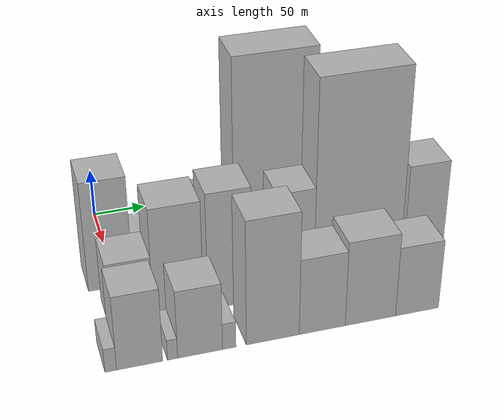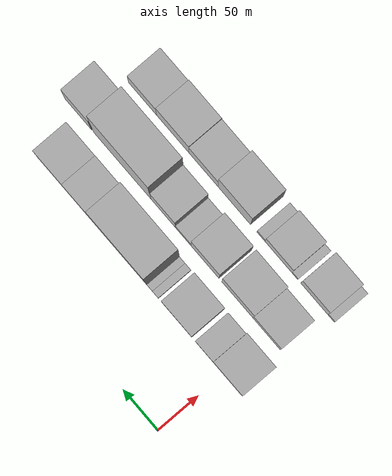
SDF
<sdf version="1.6">
 <world name="default">
  <model name="building_17">
   <static>1</static>
   <pose>100.0000 -5.4270 0 0.000000 0.000000 0.000000</pose>
   <link name="link">
    <pose>0 0 57.00 0 0 0</pose>
    <collision name="collision"><geometry><box><size>40.0000 40.4692 114.0000</size></box></geometry></collision>
    <visual name="visual">
     <cast_shadows>0</cast_shadows>
     <geometry><box><size>40.0000 40.4692 114.0000</size></box></geometry>
     <material>
      <script>
       <uri>model://HANNAS_wall/materials/scripts</uri>
       <uri>model://HANNAS_wall/materials/textures</uri>
       <name>vrc/HANNAS_wall</name>
      </script>
     </material>
    </visual>
   </link>
  </model>
  <model name="building_18">
   <static>1</static>
   <pose>100.0000 27.4994 0 0.000000 0.000000 0.000000</pose>
   <link name="link">
    <pose>0 0 24.00 0 0 0</pose>
    <collision name="collision"><geometry><box><size>40.0000 25.3837 48.0000</size></box></geometry></collision>
    <visual name="visual">
     <cast_shadows>0</cast_shadows>
     <geometry><box><size>40.0000 25.3837 48.0000</size></box></geometry>
     <material>
      <script>
       <uri>model://HANNAS_wall/materials/scripts</uri>
       <uri>model://HANNAS_wall/materials/textures</uri>
       <name>vrc/HANNAS_wall</name>
      </script>
     </material>
    </visual>
   </link>
  </model>
  <model name="building_19">
   <static>1</static>
   <pose>100.0000 66.5059 0 0.000000 0.000000 0.000000</pose>
   <link name="link">
    <pose>0 0 37.50 0 0 0</pose>
    <collision name="collision"><geometry><box><size>40.0000 42.6294 75.0000</size></box></geometry></collision>
    <visual name="visual">
     <cast_shadows>0</cast_shadows>
     <geometry><box><size>40.0000 42.6294 75.0000</size></box></geometry>
     <material>
      <script>
       <uri>model://HANNAS_wall/materials/scripts</uri>
       <uri>model://HANNAS_wall/materials/textures</uri>
       <name>vrc/HANNAS_wall</name>
      </script>
     </material>
    </visual>
   </link>
  </model>
  <model name="building_20">
   <static>1</static>
   <pose>100.0000 97.0517 0 0.000000 0.000000 0.000000</pose>
   <link name="link">
    <pose>0 0 9.00 0 0 0</pose>
    <collision name="collision"><geometry><box><size>40.0000 8.4620 18.0000</size></box></geometry></collision>
    <visual name="visual">
     <cast_shadows>0</cast_shadows>
     <geometry><box><size>40.0000 8.4620 18.0000</size></box></geometry>
     <material>
      <script>
       <uri>model://HANNAS_wall/materials/scripts</uri>
       <uri>model://HANNAS_wall/materials/textures</uri>
       <name>vrc/HANNAS_wall</name>
      </script>
     </material>
    </visual>
   </link>
  </model>
  <model name="building_21">
   <static>1</static>
   <pose>100.0000 105.2145 0 0.000000 0.000000 0.000000</pose>
   <link name="link">
    <pose>0 0 9.00 0 0 0</pose>
    <collision name="collision"><geometry><box><size>40.0000 7.8637 18.0000</size></box></geometry></collision>
    <visual name="visual">
     <cast_shadows>0</cast_shadows>
     <geometry><box><size>40.0000 7.8637 18.0000</size></box></geometry>
     <material>
      <script>
       <uri>model://HANNAS_wall/materials/scripts</uri>
       <uri>model://HANNAS_wall/materials/textures</uri>
       <name>vrc/HANNAS_wall</name>
      </script>
     </material>
    </visual>
   </link>
  </model>
  <model name="building_22">
   <static>1</static>
   <pose>100.0000 147.9191 0 0.000000 0.000000 0.000000</pose>
   <link name="link">
    <pose>0 0 106.50 0 0 0</pose>
    <collision name="collision"><geometry><box><size>40.0000 77.5454 213.0000</size></box></geometry></collision>
    <visual name="visual">
     <cast_shadows>0</cast_shadows>
     <geometry><box><size>40.0000 77.5454 213.0000</size></box></geometry>
     <material>
      <script>
       <uri>model://HANNAS_wall/materials/scripts</uri>
       <uri>model://HANNAS_wall/materials/textures</uri>
       <name>vrc/HANNAS_wall</name>
      </script>
     </material>
    </visual>
   </link>
  </model>
  <model name="building_23">
   <static>1</static>
   <pose>100.0000 205.8057 0 0.000000 0.000000 0.000000</pose>
   <link name="link">
    <pose>0 0 58.50 0 0 0</pose>
    <collision name="collision"><geometry><box><size>40.0000 38.2280 117.0000</size></box></geometry></collision>
    <visual name="visual">
     <cast_shadows>0</cast_shadows>
     <geometry><box><size>40.0000 38.2280 117.0000</size></box></geometry>
     <material>
      <script>
       <uri>model://HANNAS_wall/materials/scripts</uri>
       <uri>model://HANNAS_wall/materials/textures</uri>
       <name>vrc/HANNAS_wall</name>
      </script>
     </material>
    </visual>
   </link>
  </model>
  <model name="building_24">
   <static>1</static>
   <pose>100.0000 245.2790 0 0.000000 0.000000 0.000000</pose>
   <link name="link">
    <pose>0 0 54.00 0 0 0</pose>
    <collision name="collision"><geometry><box><size>40.0000 40.7185 108.0000</size></box></geometry></collision>
    <visual name="visual">
     <cast_shadows>0</cast_shadows>
     <geometry><box><size>40.0000 40.7185 108.0000</size></box></geometry>
     <material>
      <script>
       <uri>model://HANNAS_wall/materials/scripts</uri>
       <uri>model://HANNAS_wall/materials/textures</uri>
       <name>vrc/HANNAS_wall</name>
      </script>
     </material>
    </visual>
   </link>
  </model>
  <model name="building_49">
   <static>1</static>
   <pose>155.0000 2.4951 0 0.000000 0.000000 0.000000</pose>
   <link name="link">
    <pose>0 0 33.00 0 0 0</pose>
    <collision name="collision"><geometry><box><size>40.0000 38.9385 66.0000</size></box></geometry></collision>
    <visual name="visual">
     <cast_shadows>0</cast_shadows>
     <geometry><box><size>40.0000 38.9385 66.0000</size></box></geometry>
     <material>
      <script>
       <uri>model://HANNAS_wall/materials/scripts</uri>
       <uri>model://HANNAS_wall/materials/textures</uri>
       <name>vrc/HANNAS_wall</name>
      </script>
     </material>
    </visual>
   </link>
  </model>
  <model name="building_50">
   <static>1</static>
   <pose>155.0000 44.1461 0 0.000000 0.000000 0.000000</pose>
   <link name="link">
    <pose>0 0 57.00 0 0 0</pose>
    <collision name="collision"><geometry><box><size>40.0000 44.3635 114.0000</size></box></geometry></collision>
    <visual name="visual">
     <cast_shadows>0</cast_shadows>
     <geometry><box><size>40.0000 44.3635 114.0000</size></box></geometry>
     <material>
      <script>
       <uri>model://HANNAS_wall/materials/scripts</uri>
       <uri>model://HANNAS_wall/materials/textures</uri>
       <name>vrc/HANNAS_wall</name>
      </script>
     </material>
    </visual>
   </link>
  </model>
  <model name="building_51">
   <static>1</static>
   <pose>155.0000 90.1031 0 0.000000 0.000000 0.000000</pose>
   <link name="link">
    <pose>0 0 60.00 0 0 0</pose>
    <collision name="collision"><geometry><box><size>40.0000 39.5505 120.0000</size></box></geometry></collision>
    <visual name="visual">
     <cast_shadows>0</cast_shadows>
     <geometry><box><size>40.0000 39.5505 120.0000</size></box></geometry>
     <material>
      <script>
       <uri>model://HANNAS_wall/materials/scripts</uri>
       <uri>model://HANNAS_wall/materials/textures</uri>
       <name>vrc/HANNAS_wall</name>
      </script>
     </material>
    </visual>
   </link>
  </model>
  <model name="building_52">
   <static>1</static>
   <pose>155.0000 121.1536 0 0.000000 0.000000 0.000000</pose>
   <link name="link">
    <pose>0 0 21.00 0 0 0</pose>
    <collision name="collision"><geometry><box><size>40.0000 22.5504 42.0000</size></box></geometry></collision>
    <visual name="visual">
     <cast_shadows>0</cast_shadows>
     <geometry><box><size>40.0000 22.5504 42.0000</size></box></geometry>
     <material>
      <script>
       <uri>model://HANNAS_wall/materials/scripts</uri>
       <uri>model://HANNAS_wall/materials/textures</uri>
       <name>vrc/HANNAS_wall</name>
      </script>
     </material>
    </visual>
   </link>
  </model>
  <model name="building_53">
   <static>1</static>
   <pose>155.0000 149.9112 0 0.000000 0.000000 0.000000</pose>
   <link name="link">
    <pose>0 0 54.00 0 0 0</pose>
    <collision name="collision"><geometry><box><size>40.0000 34.9647 108.0000</size></box></geometry></collision>
    <visual name="visual">
     <cast_shadows>0</cast_shadows>
     <geometry><box><size>40.0000 34.9647 108.0000</size></box></geometry>
     <material>
      <script>
       <uri>model://HANNAS_wall/materials/scripts</uri>
       <uri>model://HANNAS_wall/materials/textures</uri>
       <name>vrc/HANNAS_wall</name>
      </script>
     </material>
    </visual>
   </link>
  </model>
  <model name="building_54">
   <static>1</static>
   <pose>155.0000 208.5201 0 0.000000 0.000000 0.000000</pose>
   <link name="link">
    <pose>0 0 106.50 0 0 0</pose>
    <collision name="collision"><geometry><box><size>40.0000 82.2531 213.0000</size></box></geometry></collision>
    <visual name="visual">
     <cast_shadows>0</cast_shadows>
     <geometry><box><size>40.0000 82.2531 213.0000</size></box></geometry>
     <material>
      <script>
       <uri>model://HANNAS_wall/materials/scripts</uri>
       <uri>model://HANNAS_wall/materials/textures</uri>
       <name>vrc/HANNAS_wall</name>
      </script>
     </material>
    </visual>
   </link>
  </model>
  <model name="building_55">
   <static>1</static>
   <pose>155.0000 271.6360 0 0.000000 0.000000 0.000000</pose>
   <link name="link">
    <pose>0 0 57.00 0 0 0</pose>
    <collision name="collision"><geometry><box><size>40.0000 37.9787 114.0000</size></box></geometry></collision>
    <visual name="visual">
     <cast_shadows>0</cast_shadows>
     <geometry><box><size>40.0000 37.9787 114.0000</size></box></geometry>
     <material>
      <script>
       <uri>model://HANNAS_wall/materials/scripts</uri>
       <uri>model://HANNAS_wall/materials/textures</uri>
       <name>vrc/HANNAS_wall</name>
      </script>
     </material>
    </visual>
   </link>
  </model>
  <model name="building_80">
   <static>1</static>
   <pose>210.0000 -25.7105 0 0.000000 0.000000 0.000000</pose>
   <link name="link">
    <pose>0 0 12.00 0 0 0</pose>
    <collision name="collision"><geometry><box><size>40.0000 9.6433 24.0000</size></box></geometry></collision>
    <visual name="visual">
     <cast_shadows>0</cast_shadows>
     <geometry><box><size>40.0000 9.6433 24.0000</size></box></geometry>
     <material>
      <script>
       <uri>model://HANNAS_wall/materials/scripts</uri>
       <uri>model://HANNAS_wall/materials/textures</uri>
       <name>vrc/HANNAS_wall</name>
      </script>
     </material>
    </visual>
   </link>
  </model>
  <model name="building_81">
   <static>1</static>
   <pose>210.0000 -1.6142 0 0.000000 0.000000 0.000000</pose>
   <link name="link">
    <pose>0 0 37.50 0 0 0</pose>
    <collision name="collision"><geometry><box><size>40.0000 38.5492 75.0000</size></box></geometry></collision>
    <visual name="visual">
     <cast_shadows>0</cast_shadows>
     <geometry><box><size>40.0000 38.5492 75.0000</size></box></geometry>
     <material>
      <script>
       <uri>model://HANNAS_wall/materials/scripts</uri>
       <uri>model://HANNAS_wall/materials/textures</uri>
       <name>vrc/HANNAS_wall</name>
      </script>
     </material>
    </visual>
   </link>
  </model>
  <model name="building_82">
   <static>1</static>
   <pose>210.0000 25.9447 0 0.000000 0.000000 0.000000</pose>
   <link name="link">
    <pose>0 0 10.50 0 0 0</pose>
    <collision name="collision"><geometry><box><size>40.0000 8.5685 21.0000</size></box></geometry></collision>
    <visual name="visual">
     <cast_shadows>0</cast_shadows>
     <geometry><box><size>40.0000 8.5685 21.0000</size></box></geometry>
     <material>
      <script>
       <uri>model://HANNAS_wall/materials/scripts</uri>
       <uri>model://HANNAS_wall/materials/textures</uri>
       <name>vrc/HANNAS_wall</name>
      </script>
     </material>
    </visual>
   </link>
  </model>
  <model name="building_83">
   <static>1</static>
   <pose>210.0000 49.4409 0 0.000000 0.000000 0.000000</pose>
   <link name="link">
    <pose>0 0 34.50 0 0 0</pose>
    <collision name="collision"><geometry><box><size>40.0000 38.4240 69.0000</size></box></geometry></collision>
    <visual name="visual">
     <cast_shadows>0</cast_shadows>
     <geometry><box><size>40.0000 38.4240 69.0000</size></box></geometry>
     <material>
      <script>
       <uri>model://HANNAS_wall/materials/scripts</uri>
       <uri>model://HANNAS_wall/materials/textures</uri>
       <name>vrc/HANNAS_wall</name>
      </script>
     </material>
    </visual>
   </link>
  </model>
  <model name="building_84">
   <static>1</static>
   <pose>210.0000 74.4827 0 0.000000 0.000000 0.000000</pose>
   <link name="link">
    <pose>0 0 13.50 0 0 0</pose>
    <collision name="collision"><geometry><box><size>40.0000 11.6597 27.0000</size></box></geometry></collision>
    <visual name="visual">
     <cast_shadows>0</cast_shadows>
     <geometry><box><size>40.0000 11.6597 27.0000</size></box></geometry>
     <material>
      <script>
       <uri>model://HANNAS_wall/materials/scripts</uri>
       <uri>model://HANNAS_wall/materials/textures</uri>
       <name>vrc/HANNAS_wall</name>
      </script>
     </material>
    </visual>
   </link>
  </model>
  <model name="building_85">
   <static>1</static>
   <pose>210.0000 112.6985 0 0.000000 0.000000 0.000000</pose>
   <link name="link">
    <pose>0 0 63.00 0 0 0</pose>
    <collision name="collision"><geometry><box><size>40.0000 46.7719 126.0000</size></box></geometry></collision>
    <visual name="visual">
     <cast_shadows>0</cast_shadows>
     <geometry><box><size>40.0000 46.7719 126.0000</size></box></geometry>
     <material>
      <script>
       <uri>model://HANNAS_wall/materials/scripts</uri>
       <uri>model://HANNAS_wall/materials/textures</uri>
       <name>vrc/HANNAS_wall</name>
      </script>
     </material>
    </visual>
   </link>
  </model>
  <model name="building_86">
   <static>1</static>
   <pose>210.0000 156.8260 0 0.000000 0.000000 0.000000</pose>
   <link name="link">
    <pose>0 0 39.00 0 0 0</pose>
    <collision name="collision"><geometry><box><size>40.0000 41.4829 78.0000</size></box></geometry></collision>
    <visual name="visual">
     <cast_shadows>0</cast_shadows>
     <geometry><box><size>40.0000 41.4829 78.0000</size></box></geometry>
     <material>
      <script>
       <uri>model://HANNAS_wall/materials/scripts</uri>
       <uri>model://HANNAS_wall/materials/textures</uri>
       <name>vrc/HANNAS_wall</name>
      </script>
     </material>
    </visual>
   </link>
  </model>
  <model name="building_87">
   <static>1</static>
   <pose>210.0000 200.7330 0 0.000000 0.000000 0.000000</pose>
   <link name="link">
    <pose>0 0 43.50 0 0 0</pose>
    <collision name="collision"><geometry><box><size>40.0000 46.3311 87.0000</size></box></geometry></collision>
    <visual name="visual">
     <cast_shadows>0</cast_shadows>
     <geometry><box><size>40.0000 46.3311 87.0000</size></box></geometry>
     <material>
      <script>
       <uri>model://HANNAS_wall/materials/scripts</uri>
       <uri>model://HANNAS_wall/materials/textures</uri>
       <name>vrc/HANNAS_wall</name>
      </script>
     </material>
    </visual>
   </link>
  </model>
  <model name="building_88">
   <static>1</static>
   <pose>210.0000 244.0291 0 0.000000 0.000000 0.000000</pose>
   <link name="link">
    <pose>0 0 36.00 0 0 0</pose>
    <collision name="collision"><geometry><box><size>40.0000 40.2612 72.0000</size></box></geometry></collision>
    <visual name="visual">
     <cast_shadows>0</cast_shadows>
     <geometry><box><size>40.0000 40.2612 72.0000</size></box></geometry>
     <material>
      <script>
       <uri>model://HANNAS_wall/materials/scripts</uri>
       <uri>model://HANNAS_wall/materials/textures</uri>
       <name>vrc/HANNAS_wall</name>
      </script>
     </material>
    </visual>
   </link>
  </model>
 </world>
</sdf>
